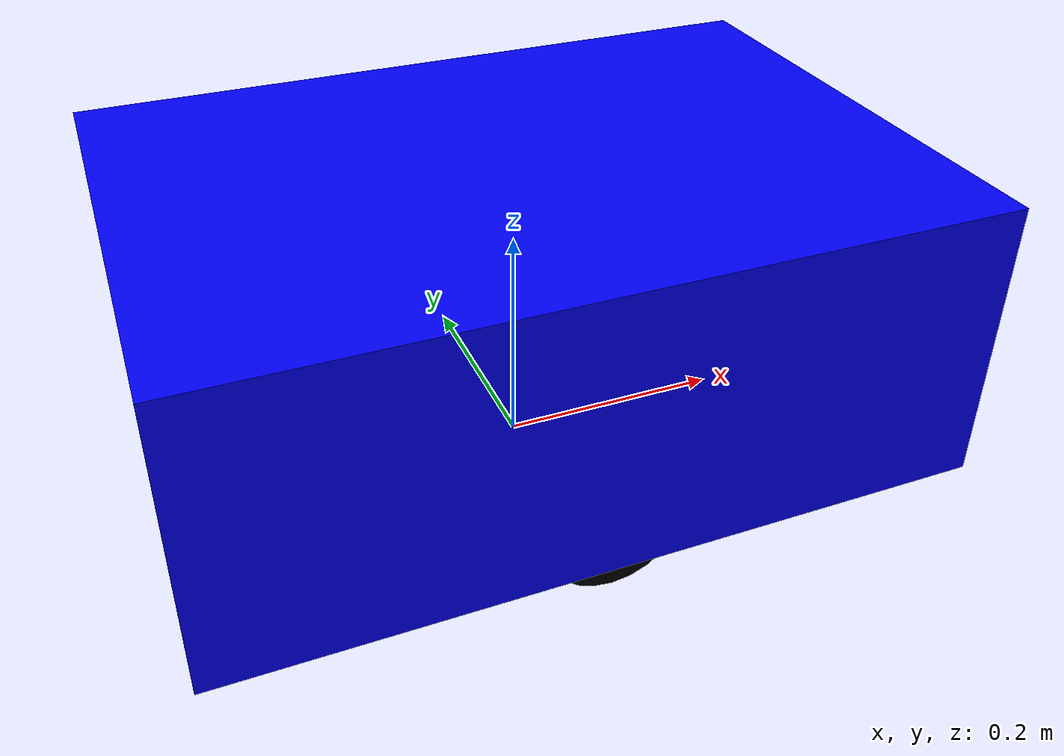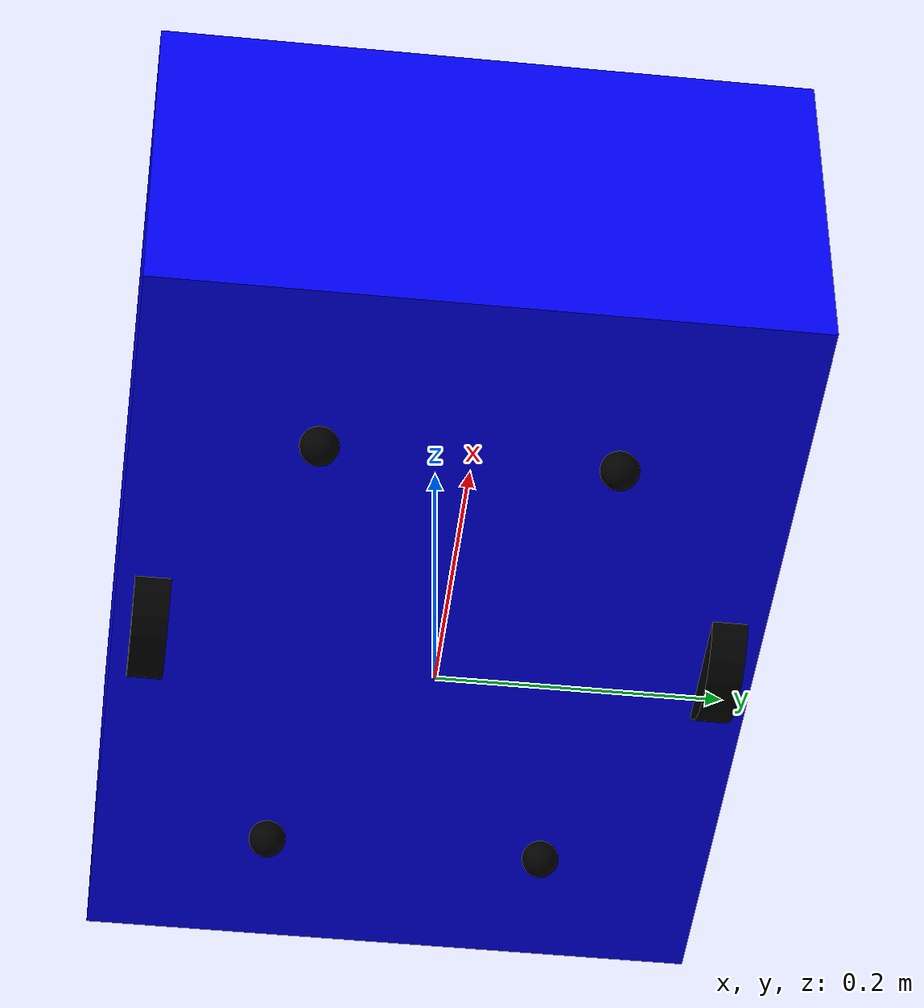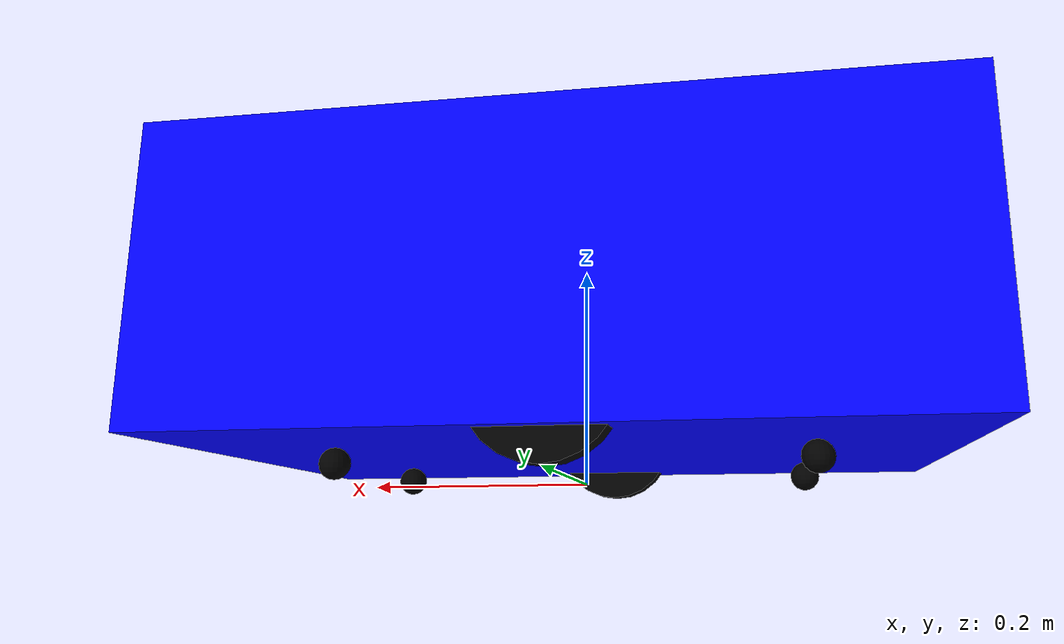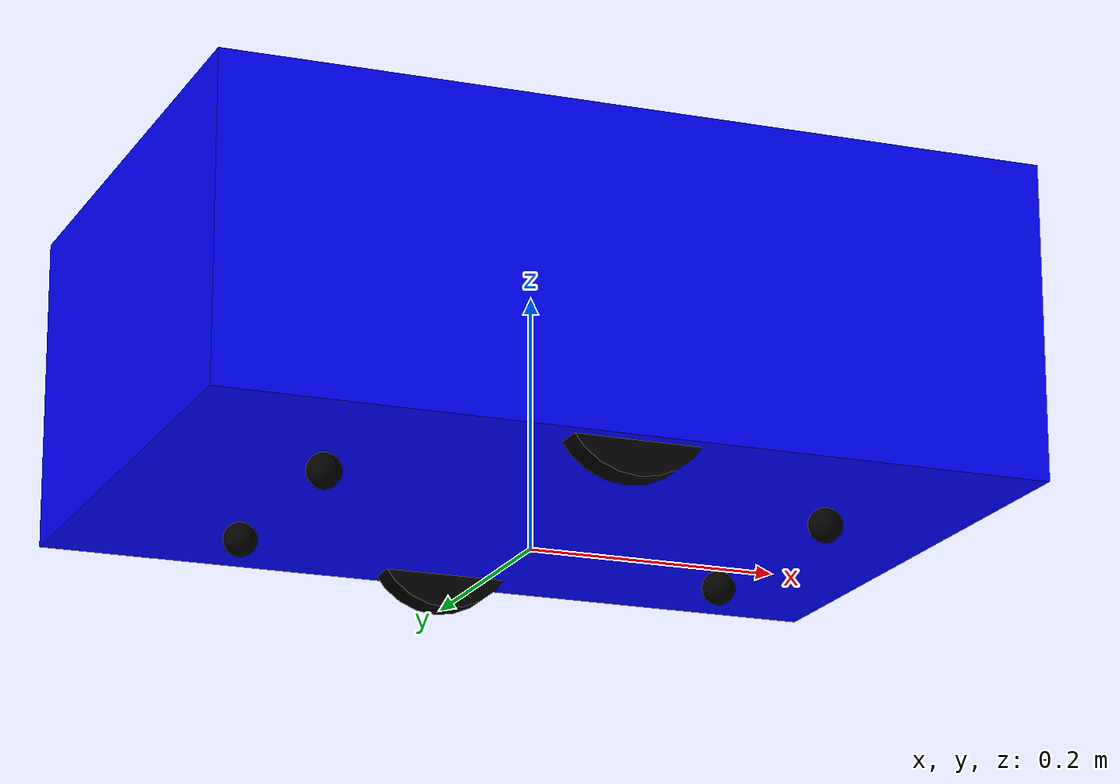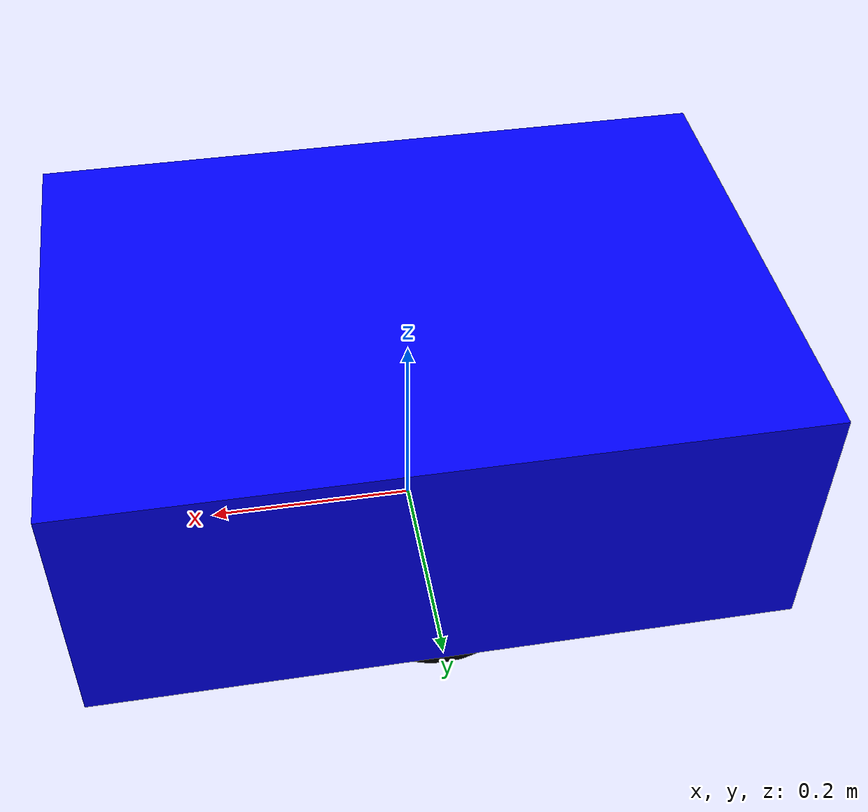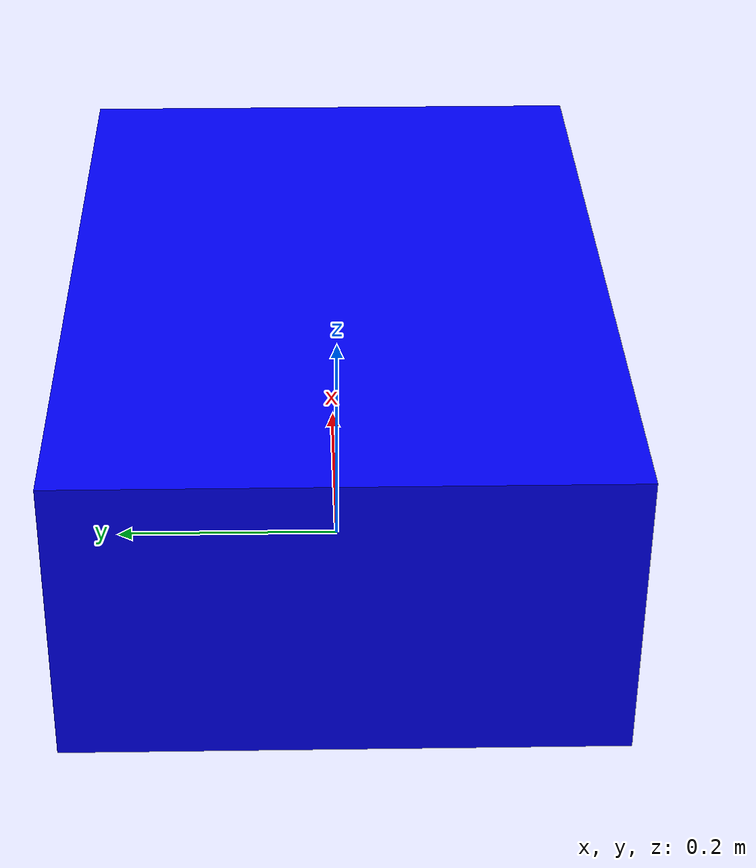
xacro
<?xml version="1.0"?>
<robot xmlns:xacro="http://www.ros.org/wiki/xacro">

    <xacro:include filename="inertial.xacro" />

    <!-- MATERIAL COLOR-->

    <material name= "blue">
        <color rgba= "0 0 1 1" />
    </material>
    <material name= "green">
        <color rgba= "0 1 0 1" />
    </material>
    <material name= "red">
        <color rgba= "1 0 0 1" />
    </material>
    <material name= "black">
        <color rgba= "0 0 0 1" />
    </material>
    <material name= "white">
        <color rgba= "1 1 1 1" />
    </material>
    <material name= "yellow">
        <color rgba= "1 0.9 0.2 1" />
    </material>

    <!-- common val-->

    <xacro:property name="b_l" value="0.65"/>
    <xacro:property name="b_w" value="0.45"/>
    <xacro:property name="b_h" value="0.25"/>
    <xacro:property name="w_r" value="0.06"/>
    <xacro:property name="w_l" value="0.025"/>
    <xacro:property name="c_r" value="0.0135"/>
    <xacro:property name="c_d" value="0.027"/>

    <!-- BASE LINK -->

    <link name="base_link">

    </link>

    <!-- base_footprint -->

    <link name="base_footprint">
    </link>

    <!-- BASE_FOOTPRINT LINK -->

    <joint name="base_footprint_joint" type="fixed">
        <parent link="base_link"/>
        <child link="base_footprint"/>
        <origin xyz="0 0 0" rpy="0 0 0"/>
    </joint>

    <!-- chassis link -->

    <link name="chassis_link">
        <visual>
            <geometry>
                <box size="${b_l} ${b_w} ${b_h}" />
            </geometry>
            <origin xyz="0 0 ${b_h/2}" rpy="0 0 0" />
            <material name="blue" />
        </visual>
        <collision>
            <geometry>
                <box size="${b_l} ${b_w} ${b_h}"/>
            </geometry>
            <origin xyz="0 0 ${b_h/2}" rpy="0 0 0" />
        </collision>
        <xacro:box_inertia m="5" l="${b_l}" w="${b_w}" h="${b_h}"
            xyz="0 0 ${b_h/2}" rpy="0 0 0" />
    </link>

    <!-- chassis joint -->

    <joint name = "chassis_joint " type = "fixed">
        <parent link ="base_link" />
        <child link ="chassis_link"   />
        <origin xyz="0 0 ${c_d}" rpy="0 0 0" />
    </joint>

    <!-- wheel link -->

    <xacro:macro name="wheel_link" params="pre" >
        <link name="${pre}_wheel_link">
            <visual>
                <geometry>
                    <cylinder radius="${w_r}" length="${w_l}" />
                </geometry>
                <origin xyz="0 0 0" rpy="1.57 0 0" />
                <material name="black" />
            </visual>
            <collision>
                <geometry>
                    <cylinder radius="${w_r}" length="${w_l}" />
                </geometry>
                <origin xyz="0 0 0" rpy="1.57 0 0" />
            </collision>
            <xacro:cylinder_inertia m="0.1" r="${w_r}" h="${w_l}"
                xyz="0 0 0" rpy="1.57 0 0" />
        </link>
    </xacro:macro>

    <xacro:wheel_link pre="l" />
    <xacro:wheel_link pre="r" />

    <!-- wheel joint -->

    <joint name = "r_wheel_joint" type = "continuous">
        <parent link ="base_link" />
        <child link ="r_wheel_link"   />
        <origin xyz="0 ${(b_w/2) - w_l} ${w_r}" rpy="0 0 0" />
        <axis xyz ="0 1 0 "  />
    </joint>

    <joint name = "l_wheel_joint" type = "continuous">
        <parent link ="base_link" />
        <child link ="l_wheel_link"   />
        <origin xyz="0 ${(-b_w/2) + w_l} ${w_r}" rpy="0 0 0" />
        <axis xyz ="0 1 0 "  />
    </joint>

    <!-- caster link -->

    <xacro:macro name="caster" params="pre">
        <link name="caster_wheel_link_${pre}">
            <visual>
                <geometry>
                    <sphere radius="${c_r}" />
                </geometry>
                <origin xyz="0 0 0" rpy="0 0 0" />
                <material name="black" />
            </visual>
            <collision>
                <geometry>
                    <sphere radius="${c_r}" />
                </geometry>
                <origin xyz="0 0 0" rpy="0 0 0" />
            </collision>
            <xacro:caster_inertia m="0.05" r="${c_r}"
                xyz="0 0 0" rpy="0 0 0" />
        </link>
    </xacro:macro>

    <xacro:caster pre="1" />
    <xacro:caster pre="2" />
    <xacro:caster pre="3" />
    <xacro:caster pre="4" />

    <!-- caster joint -->

    <joint name = "caster_wheel_joint_1" type = "fixed">
        <parent link ="chassis_link" />
        <child link ="caster_wheel_link_1"   />
        <origin xyz="0.2 0.1 -0.0135" rpy="0 0 0" />
    </joint>

    <joint name = "caster_wheel_joint_2" type = "fixed">
        <parent link ="chassis_link" />
        <child link ="caster_wheel_link_2"   />
        <origin xyz="-0.2 0.1 -0.0135" rpy="0 0 0" />
    </joint>

    <joint name = "caster_wheel_joint_3" type = "fixed">
        <parent link ="chassis_link" />
        <child link ="caster_wheel_link_3"   />
        <origin xyz="0.2 -0.1 -0.0135" rpy="0 0 0" />
    </joint>

    <joint name = "caster_wheel_joint_4" type = "fixed">
        <parent link ="chassis_link" />
        <child link ="caster_wheel_link_4"   />
        <origin xyz="-0.2 -0.1 -0.0135" rpy="0 0 0" />
    </joint>

</robot>

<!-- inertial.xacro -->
<robot xmlns:xacro="http://www.ros.org/wiki/xacro">

    <xacro:macro name="box_inertia" params="m l w h xyz rpy " >
        <inertial>
            <origin xyz ="${xyz}" rpy="${rpy}" />
            <mass value="${m}" />
            <inertia ixx="${(m/12) * (h*h + l*l)}" ixy="0" ixz="0"
                iyy="${(m/12) * (w*w + l*l)}" iyz="0"
                izz="${(m/12) * (w*w + h*h)}" >
            </inertia>
        </inertial>
    </xacro:macro>

    <xacro:macro name="cylinder_inertia" params="m r h xyz rpy " >
        <inertial>
            <origin xyz ="${xyz}" rpy="${rpy}" />
            <mass value="${m}" />
            <inertia ixx="${(m/12) * (3 * r*r + h*h)}" ixy="0" ixz="0"
                iyy="${(m/12) * (3 * r*r + h*h)}" iyz="0"
                izz="${(m/12) * r*r }" >
            </inertia>
        </inertial>
    </xacro:macro>

    <xacro:macro name="caster_inertia" params="m r xyz rpy " >
        <inertial>
            <origin xyz ="${xyz}" rpy="${rpy}" />
            <mass value="${m}" />
            <inertia ixx="${(2/5) * m*r*r}" ixy="0" ixz="0"
                iyy="${(2/5) * m*r*r}" iyz="0"
                izz="${(2/5) * m*r*r }" >
            </inertia>
        </inertial>
    </xacro:macro>

</robot>
